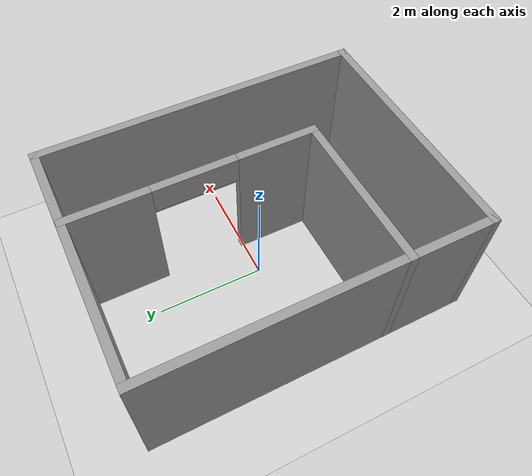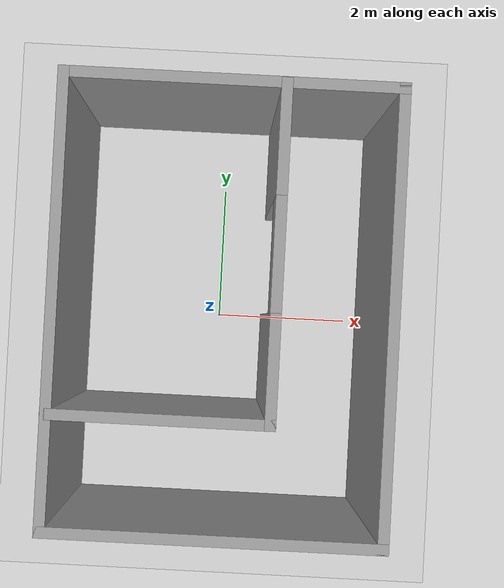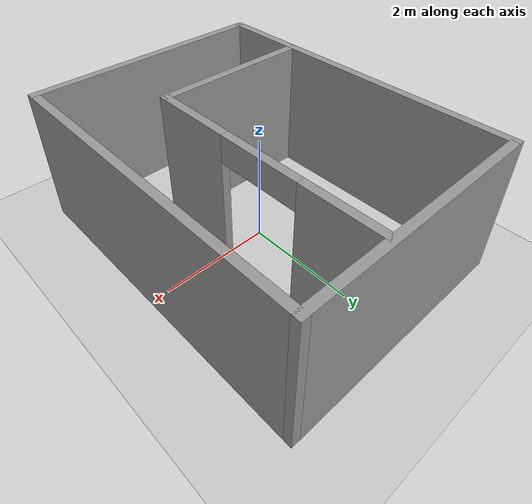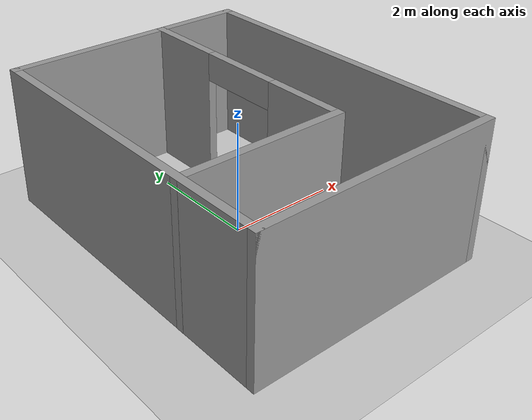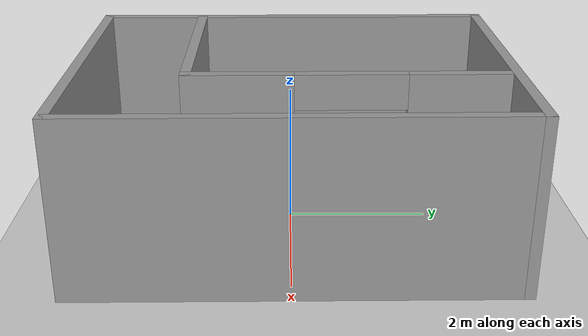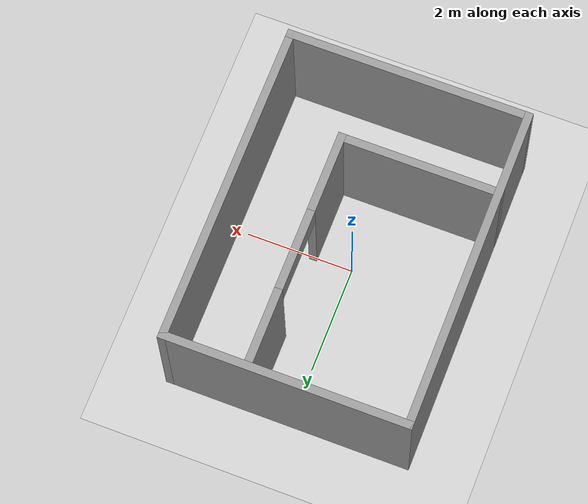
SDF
<sdf version="1.6">
 <world name="default">
  <light name="sun" type="directional">
   <pose>0 0 10 0 -0 0</pose>
   <diffuse>0.8 0.8 0.8 1</diffuse>
   <specular>0.1 0.1 0.1 1</specular>
   <attenuation>
    <range>1000</range>
    <constant>0.9</constant>
    <linear>0.01</linear>
    <quadratic>0.001</quadratic>
   </attenuation>
   <direction>-0.5 0.5 -1</direction>
  </light>
  <model name="ground_plane">
   <static>1</static>
   <link name="link">
    <collision name="collision">
     <geometry><plane><normal>0 0 1</normal><size>100 100</size></plane></geometry>
     <surface><friction><ode><mu>100</mu><mu2>50</mu2></ode></friction></surface>
    </collision>
    <visual name="visual">
     <cast_shadows>0</cast_shadows>
     <geometry><plane><normal>0 0 1</normal><size>100 100</size></plane></geometry>
     <material>
      <script><uri>file://media/materials/scripts/gazebo.material</uri><name>Gazebo/Grey</name></script>
     </material>
    </visual>
   </link>
  </model>
  <gravity>0 0 -9.8</gravity>
  <magnetic_field>6e-06 2.3e-05 -4.2e-05</magnetic_field>
  <atmosphere type="adiabatic"/>
  <physics name="default_physics" default="0" type="ode">
   <max_step_size>0.001</max_step_size>
   <real_time_factor>1</real_time_factor>
   <real_time_update_rate>1000</real_time_update_rate>
  </physics>
  <scene><ambient>0.4 0.4 0.4 1</ambient><background>0.7 0.7 0.7 1</background><shadows>1</shadows></scene>
  <spherical_coordinates>
   <surface_model>EARTH_WGS84</surface_model>
   <latitude_deg>0</latitude_deg>
   <longitude_deg>0</longitude_deg>
   <elevation>0</elevation>
   <heading_deg>0</heading_deg>
  </spherical_coordinates>
  <model name="room">
   <pose>0.049846 0.057827 0 0 -0 0</pose>
   <link name="Wall_0">
    <collision name="Wall_0_Collision">
     <geometry><box><size>4.572 0.15 2.5</size></box></geometry>
     <pose>0 0 1.25 0 -0 0</pose>
    </collision>
    <visual name="Wall_0_Visual">
     <pose>0 0 1.25 0 -0 0</pose>
     <geometry><box><size>4.572 0.15 2.5</size></box></geometry>
     <material>
      <script><uri>file://media/materials/scripts/gazebo.material</uri><name>Gazebo/Grey</name></script>
      <ambient>1 1 1 1</ambient>
     </material>
    </visual>
    <pose>0.00115 -2.973 0 0 -0 0</pose>
   </link>
   <link name="Wall_10">
    <pose>0.68585 0.754075 0 0 -0 1.5708</pose>
    <visual name="Wall_10_Visual_0">
     <pose>-1.52521 0 1.25 0 -0 0</pose>
     <geometry><box><size>1.52157 0.15 2.5</size></box></geometry>
     <material>
      <script><uri>file://media/materials/scripts/gazebo.material</uri><name>Gazebo/Grey</name></script>
      <ambient>1 1 1 1</ambient>
     </material>
    </visual>
    <collision name="Wall_10_Collision_0">
     <geometry><box><size>1.52157 0.15 2.5</size></box></geometry>
     <pose>-1.52521 0 1.25 0 -0 0</pose>
    </collision>
    <visual name="Wall_10_Visual_1">
     <pose>1.52279 0 1.25 0 -0 0</pose>
     <geometry><box><size>1.52642 0.15 2.5</size></box></geometry>
     <material>
      <script><uri>file://media/materials/scripts/gazebo.material</uri><name>Gazebo/Grey</name></script>
      <ambient>1 1 1 1</ambient>
     </material>
    </visual>
    <collision name="Wall_10_Collision_1">
     <geometry><box><size>1.52642 0.15 2.5</size></box></geometry>
     <pose>1.52279 0 1.25 0 -0 0</pose>
    </collision>
    <visual name="Wall_10_Visual_2">
     <pose>-0.002425 0 2.25 0 -0 0</pose>
     <geometry><box><size>1.524 0.15 0.5</size></box></geometry>
     <material>
      <script><uri>file://media/materials/scripts/gazebo.material</uri><name>Gazebo/Grey</name></script>
      <ambient>1 1 1 1</ambient>
     </material>
    </visual>
    <collision name="Wall_10_Collision_2">
     <geometry><box><size>1.524 0.15 0.5</size></box></geometry>
     <pose>-0.002425 0 2.25 0 -0 0</pose>
    </collision>
   </link>
   <link name="Wall_2">
    <collision name="Wall_2_Collision">
     <geometry><box><size>6.096 0.15 2.5</size></box></geometry>
     <pose>0 0 1.25 0 -0 0</pose>
    </collision>
    <visual name="Wall_2_Visual">
     <pose>0 0 1.25 0 -0 0</pose>
     <geometry><box><size>6.096 0.15 2.5</size></box></geometry>
     <material>
      <script><uri>file://media/materials/scripts/gazebo.material</uri><name>Gazebo/Grey</name></script>
      <ambient>1 1 1 1</ambient>
     </material>
    </visual>
    <pose>-2.20985 0 0 0 -0 1.5708</pose>
   </link>
   <link name="Wall_4">
    <collision name="Wall_4_Collision">
     <geometry><box><size>6.096 0.15 2.5</size></box></geometry>
     <pose>0 0 1.25 0 -0 0</pose>
    </collision>
    <visual name="Wall_4_Visual">
     <pose>0 0 1.25 0 -0 0</pose>
     <geometry><box><size>6.096 0.15 2.5</size></box></geometry>
     <material>
      <script><uri>file://media/materials/scripts/gazebo.material</uri><name>Gazebo/Grey</name></script>
      <ambient>1 1 1 1</ambient>
     </material>
    </visual>
    <pose>2.21215 0 0 0 -0 1.5708</pose>
   </link>
   <link name="Wall_6">
    <collision name="Wall_6_Collision">
     <geometry><box><size>4.572 0.15 2.5</size></box></geometry>
     <pose>0 0 1.25 0 -0 0</pose>
    </collision>
    <visual name="Wall_6_Visual">
     <pose>0 0 1.25 0 -0 0</pose>
     <geometry><box><size>4.572 0.15 2.5</size></box></geometry>
     <material>
      <script><uri>file://media/materials/scripts/gazebo.material</uri><name>Gazebo/Grey</name></script>
      <ambient>1 1 1 1</ambient>
     </material>
    </visual>
    <pose>0.00115 2.973 0 0 -0 3.14159</pose>
   </link>
   <link name="Wall_8">
    <collision name="Wall_8_Collision">
     <geometry><box><size>3.048 0.15 2.5</size></box></geometry>
     <pose>0 0 1.25 0 -0 0</pose>
    </collision>
    <visual name="Wall_8_Visual">
     <pose>0 0 1.25 0 -0 0</pose>
     <geometry><box><size>3.048 0.15 2.5</size></box></geometry>
     <material>
      <script><uri>file://media/materials/scripts/gazebo.material</uri><name>Gazebo/Grey</name></script>
      <ambient>1 1 1 1</ambient>
     </material>
    </visual>
    <pose>-0.76315 -1.45693 0 0 -0 0</pose>
   </link>
   <static>1</static>
  </model>
 </world>
</sdf>
